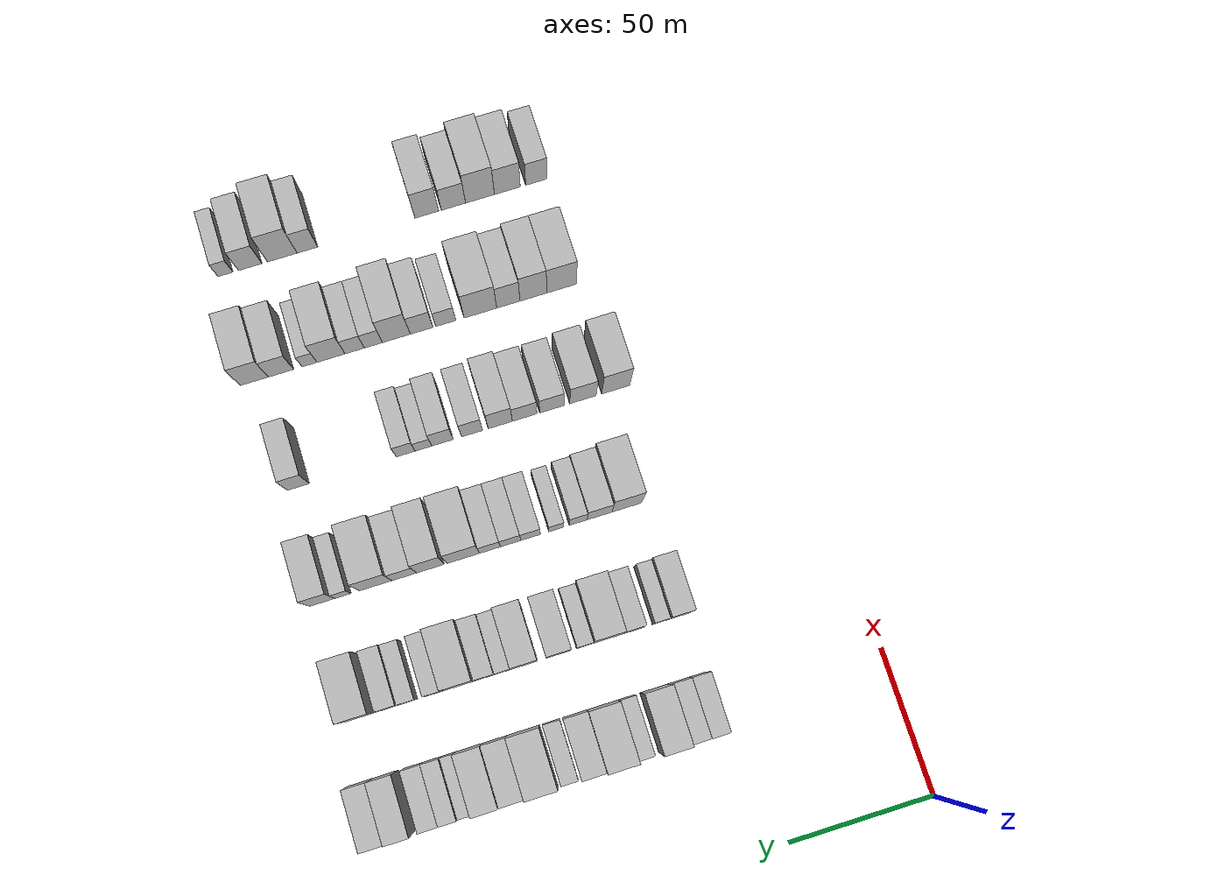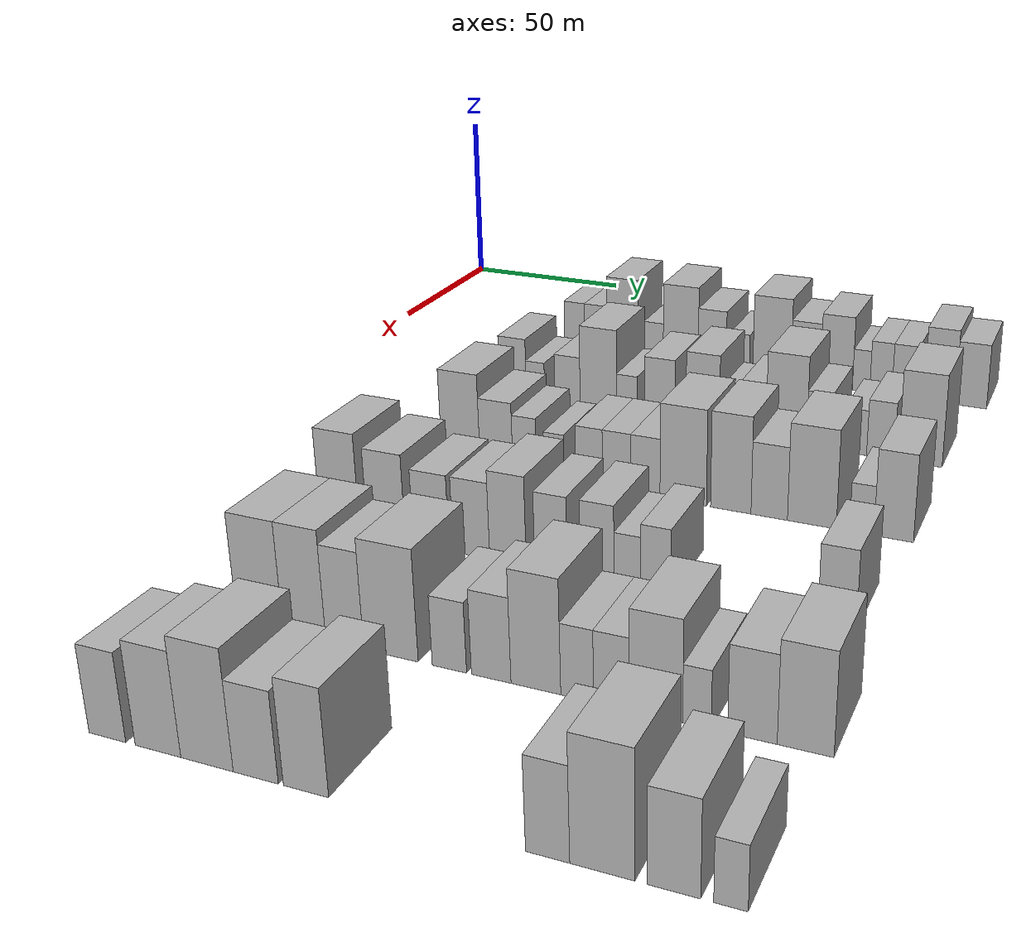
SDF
<sdf version="1.6">
 <world name="default">
  <model name="building_74">
   <static>1</static>
   <pose>50.0000 61.4282 0 0.000000 0.000000 0.000000</pose>
   <link name="link">
    <pose>0 0 7.50 0 0 0</pose>
    <collision name="collision"><geometry><box><size>20.0000 6.4562 15.0000</size></box></geometry></collision>
    <visual name="visual">
     <cast_shadows>0</cast_shadows>
     <geometry><box><size>20.0000 6.4562 15.0000</size></box></geometry>
     <material>
      <script>
       <uri>model://HANNAS_wall/materials/scripts</uri>
       <uri>model://HANNAS_wall/materials/textures</uri>
       <name>vrc/HANNAS_wall</name>
      </script>
     </material>
    </visual>
   </link>
  </model>
  <model name="building_75">
   <static>1</static>
   <pose>50.0000 68.1440 0 0.000000 0.000000 0.000000</pose>
   <link name="link">
    <pose>0 0 7.50 0 0 0</pose>
    <collision name="collision"><geometry><box><size>20.0000 6.9753 15.0000</size></box></geometry></collision>
    <visual name="visual">
     <cast_shadows>0</cast_shadows>
     <geometry><box><size>20.0000 6.9753 15.0000</size></box></geometry>
     <material>
      <script>
       <uri>model://HANNAS_wall/materials/scripts</uri>
       <uri>model://HANNAS_wall/materials/textures</uri>
       <name>vrc/HANNAS_wall</name>
      </script>
     </material>
    </visual>
   </link>
  </model>
  <model name="building_76">
   <static>1</static>
   <pose>50.0000 76.4512 0 0.000000 0.000000 0.000000</pose>
   <link name="link">
    <pose>0 0 12.00 0 0 0</pose>
    <collision name="collision"><geometry><box><size>20.0000 9.6390 24.0000</size></box></geometry></collision>
    <visual name="visual">
     <cast_shadows>0</cast_shadows>
     <geometry><box><size>20.0000 9.6390 24.0000</size></box></geometry>
     <material>
      <script>
       <uri>model://HANNAS_wall/materials/scripts</uri>
       <uri>model://HANNAS_wall/materials/textures</uri>
       <name>vrc/HANNAS_wall</name>
      </script>
     </material>
    </visual>
   </link>
  </model>
  <model name="building_77">
   <static>1</static>
   <pose>50.0000 86.1628 0 0.000000 0.000000 0.000000</pose>
   <link name="link">
    <pose>0 0 6.00 0 0 0</pose>
    <collision name="collision"><geometry><box><size>20.0000 5.7843 12.0000</size></box></geometry></collision>
    <visual name="visual">
     <cast_shadows>0</cast_shadows>
     <geometry><box><size>20.0000 5.7843 12.0000</size></box></geometry>
     <material>
      <script>
       <uri>model://HANNAS_wall/materials/scripts</uri>
       <uri>model://HANNAS_wall/materials/textures</uri>
       <name>vrc/HANNAS_wall</name>
      </script>
     </material>
    </visual>
   </link>
  </model>
  <model name="building_78">
   <static>1</static>
   <pose>50.0000 94.3628 0 0.000000 0.000000 0.000000</pose>
   <link name="link">
    <pose>0 0 12.00 0 0 0</pose>
    <collision name="collision"><geometry><box><size>20.0000 10.6158 24.0000</size></box></geometry></collision>
    <visual name="visual">
     <cast_shadows>0</cast_shadows>
     <geometry><box><size>20.0000 10.6158 24.0000</size></box></geometry>
     <material>
      <script>
       <uri>model://HANNAS_wall/materials/scripts</uri>
       <uri>model://HANNAS_wall/materials/textures</uri>
       <name>vrc/HANNAS_wall</name>
      </script>
     </material>
    </visual>
   </link>
  </model>
  <model name="building_79">
   <static>1</static>
   <pose>50.0000 103.8367 0 0.000000 0.000000 0.000000</pose>
   <link name="link">
    <pose>0 0 9.00 0 0 0</pose>
    <collision name="collision"><geometry><box><size>20.0000 8.3320 18.0000</size></box></geometry></collision>
    <visual name="visual">
     <cast_shadows>0</cast_shadows>
     <geometry><box><size>20.0000 8.3320 18.0000</size></box></geometry>
     <material>
      <script>
       <uri>model://HANNAS_wall/materials/scripts</uri>
       <uri>model://HANNAS_wall/materials/textures</uri>
       <name>vrc/HANNAS_wall</name>
      </script>
     </material>
    </visual>
   </link>
  </model>
  <model name="building_80">
   <static>1</static>
   <pose>50.0000 111.9396 0 0.000000 0.000000 0.000000</pose>
   <link name="link">
    <pose>0 0 6.00 0 0 0</pose>
    <collision name="collision"><geometry><box><size>20.0000 5.8737 12.0000</size></box></geometry></collision>
    <visual name="visual">
     <cast_shadows>0</cast_shadows>
     <geometry><box><size>20.0000 5.8737 12.0000</size></box></geometry>
     <material>
      <script>
       <uri>model://HANNAS_wall/materials/scripts</uri>
       <uri>model://HANNAS_wall/materials/textures</uri>
       <name>vrc/HANNAS_wall</name>
      </script>
     </material>
    </visual>
   </link>
  </model>
  <model name="building_81">
   <static>1</static>
   <pose>50.0000 121.3827 0 0.000000 0.000000 0.000000</pose>
   <link name="link">
    <pose>0 0 12.00 0 0 0</pose>
    <collision name="collision"><geometry><box><size>20.0000 11.0125 24.0000</size></box></geometry></collision>
    <visual name="visual">
     <cast_shadows>0</cast_shadows>
     <geometry><box><size>20.0000 11.0125 24.0000</size></box></geometry>
     <material>
      <script>
       <uri>model://HANNAS_wall/materials/scripts</uri>
       <uri>model://HANNAS_wall/materials/textures</uri>
       <name>vrc/HANNAS_wall</name>
      </script>
     </material>
    </visual>
   </link>
  </model>
  <model name="building_82">
   <static>1</static>
   <pose>50.0000 131.1170 0 0.000000 0.000000 0.000000</pose>
   <link name="link">
    <pose>0 0 9.00 0 0 0</pose>
    <collision name="collision"><geometry><box><size>20.0000 8.4562 18.0000</size></box></geometry></collision>
    <visual name="visual">
     <cast_shadows>0</cast_shadows>
     <geometry><box><size>20.0000 8.4562 18.0000</size></box></geometry>
     <material>
      <script>
       <uri>model://HANNAS_wall/materials/scripts</uri>
       <uri>model://HANNAS_wall/materials/textures</uri>
       <name>vrc/HANNAS_wall</name>
      </script>
     </material>
    </visual>
   </link>
  </model>
  <model name="building_83">
   <static>1</static>
   <pose>50.0000 139.8790 0 0.000000 0.000000 0.000000</pose>
   <link name="link">
    <pose>0 0 10.50 0 0 0</pose>
    <collision name="collision"><geometry><box><size>20.0000 9.0677 21.0000</size></box></geometry></collision>
    <visual name="visual">
     <cast_shadows>0</cast_shadows>
     <geometry><box><size>20.0000 9.0677 21.0000</size></box></geometry>
     <material>
      <script>
       <uri>model://HANNAS_wall/materials/scripts</uri>
       <uri>model://HANNAS_wall/materials/textures</uri>
       <name>vrc/HANNAS_wall</name>
      </script>
     </material>
    </visual>
   </link>
  </model>
  <model name="building_84">
   <static>1</static>
   <pose>50.0000 146.8270 0 0.000000 0.000000 0.000000</pose>
   <link name="link">
    <pose>0 0 6.00 0 0 0</pose>
    <collision name="collision"><geometry><box><size>20.0000 4.8284 12.0000</size></box></geometry></collision>
    <visual name="visual">
     <cast_shadows>0</cast_shadows>
     <geometry><box><size>20.0000 4.8284 12.0000</size></box></geometry>
     <material>
      <script>
       <uri>model://HANNAS_wall/materials/scripts</uri>
       <uri>model://HANNAS_wall/materials/textures</uri>
       <name>vrc/HANNAS_wall</name>
      </script>
     </material>
    </visual>
   </link>
  </model>
  <model name="building_85">
   <static>1</static>
   <pose>50.0000 152.3014 0 0.000000 0.000000 0.000000</pose>
   <link name="link">
    <pose>0 0 7.50 0 0 0</pose>
    <collision name="collision"><geometry><box><size>20.0000 6.1202 15.0000</size></box></geometry></collision>
    <visual name="visual">
     <cast_shadows>0</cast_shadows>
     <geometry><box><size>20.0000 6.1202 15.0000</size></box></geometry>
     <material>
      <script>
       <uri>model://HANNAS_wall/materials/scripts</uri>
       <uri>model://HANNAS_wall/materials/textures</uri>
       <name>vrc/HANNAS_wall</name>
      </script>
     </material>
    </visual>
   </link>
  </model>
  <model name="building_86">
   <static>1</static>
   <pose>50.0000 158.7077 0 0.000000 0.000000 0.000000</pose>
   <link name="link">
    <pose>0 0 7.50 0 0 0</pose>
    <collision name="collision"><geometry><box><size>20.0000 6.6924 15.0000</size></box></geometry></collision>
    <visual name="visual">
     <cast_shadows>0</cast_shadows>
     <geometry><box><size>20.0000 6.6924 15.0000</size></box></geometry>
     <material>
      <script>
       <uri>model://HANNAS_wall/materials/scripts</uri>
       <uri>model://HANNAS_wall/materials/textures</uri>
       <name>vrc/HANNAS_wall</name>
      </script>
     </material>
    </visual>
   </link>
  </model>
  <model name="building_87">
   <static>1</static>
   <pose>50.0000 168.2677 0 0.000000 0.000000 0.000000</pose>
   <link name="link">
    <pose>0 0 10.50 0 0 0</pose>
    <collision name="collision"><geometry><box><size>20.0000 8.4276 21.0000</size></box></geometry></collision>
    <visual name="visual">
     <cast_shadows>0</cast_shadows>
     <geometry><box><size>20.0000 8.4276 21.0000</size></box></geometry>
     <material>
      <script>
       <uri>model://HANNAS_wall/materials/scripts</uri>
       <uri>model://HANNAS_wall/materials/textures</uri>
       <name>vrc/HANNAS_wall</name>
      </script>
     </material>
    </visual>
   </link>
  </model>
  <model name="building_88">
   <static>1</static>
   <pose>50.0000 176.6414 0 0.000000 0.000000 0.000000</pose>
   <link name="link">
    <pose>0 0 9.00 0 0 0</pose>
    <collision name="collision"><geometry><box><size>20.0000 8.3197 18.0000</size></box></geometry></collision>
    <visual name="visual">
     <cast_shadows>0</cast_shadows>
     <geometry><box><size>20.0000 8.3197 18.0000</size></box></geometry>
     <material>
      <script>
       <uri>model://HANNAS_wall/materials/scripts</uri>
       <uri>model://HANNAS_wall/materials/textures</uri>
       <name>vrc/HANNAS_wall</name>
      </script>
     </material>
    </visual>
   </link>
  </model>
  <model name="building_212">
   <static>1</static>
   <pose>90.0000 60.9253 0 0.000000 0.000000 0.000000</pose>
   <link name="link">
    <pose>0 0 9.00 0 0 0</pose>
    <collision name="collision"><geometry><box><size>20.0000 7.9774 18.0000</size></box></geometry></collision>
    <visual name="visual">
     <cast_shadows>0</cast_shadows>
     <geometry><box><size>20.0000 7.9774 18.0000</size></box></geometry>
     <material>
      <script>
       <uri>model://HANNAS_wall/materials/scripts</uri>
       <uri>model://HANNAS_wall/materials/textures</uri>
       <name>vrc/HANNAS_wall</name>
      </script>
     </material>
    </visual>
   </link>
  </model>
  <model name="building_213">
   <static>1</static>
   <pose>90.0000 67.6078 0 0.000000 0.000000 0.000000</pose>
   <link name="link">
    <pose>0 0 6.00 0 0 0</pose>
    <collision name="collision"><geometry><box><size>20.0000 5.3876 12.0000</size></box></geometry></collision>
    <visual name="visual">
     <cast_shadows>0</cast_shadows>
     <geometry><box><size>20.0000 5.3876 12.0000</size></box></geometry>
     <material>
      <script>
       <uri>model://HANNAS_wall/materials/scripts</uri>
       <uri>model://HANNAS_wall/materials/textures</uri>
       <name>vrc/HANNAS_wall</name>
      </script>
     </material>
    </visual>
   </link>
  </model>
  <model name="building_214">
   <static>1</static>
   <pose>90.0000 76.9625 0 0.000000 0.000000 0.000000</pose>
   <link name="link">
    <pose>0 0 7.50 0 0 0</pose>
    <collision name="collision"><geometry><box><size>20.0000 7.3217 15.0000</size></box></geometry></collision>
    <visual name="visual">
     <cast_shadows>0</cast_shadows>
     <geometry><box><size>20.0000 7.3217 15.0000</size></box></geometry>
     <material>
      <script>
       <uri>model://HANNAS_wall/materials/scripts</uri>
       <uri>model://HANNAS_wall/materials/textures</uri>
       <name>vrc/HANNAS_wall</name>
      </script>
     </material>
    </visual>
   </link>
  </model>
  <model name="building_215">
   <static>1</static>
   <pose>90.0000 85.8339 0 0.000000 0.000000 0.000000</pose>
   <link name="link">
    <pose>0 0 12.00 0 0 0</pose>
    <collision name="collision"><geometry><box><size>20.0000 10.4212 24.0000</size></box></geometry></collision>
    <visual name="visual">
     <cast_shadows>0</cast_shadows>
     <geometry><box><size>20.0000 10.4212 24.0000</size></box></geometry>
     <material>
      <script>
       <uri>model://HANNAS_wall/materials/scripts</uri>
       <uri>model://HANNAS_wall/materials/textures</uri>
       <name>vrc/HANNAS_wall</name>
      </script>
     </material>
    </visual>
   </link>
  </model>
  <model name="building_216">
   <static>1</static>
   <pose>90.0000 93.9189 0 0.000000 0.000000 0.000000</pose>
   <link name="link">
    <pose>0 0 6.00 0 0 0</pose>
    <collision name="collision"><geometry><box><size>20.0000 5.7488 12.0000</size></box></geometry></collision>
    <visual name="visual">
     <cast_shadows>0</cast_shadows>
     <geometry><box><size>20.0000 5.7488 12.0000</size></box></geometry>
     <material>
      <script>
       <uri>model://HANNAS_wall/materials/scripts</uri>
       <uri>model://HANNAS_wall/materials/textures</uri>
       <name>vrc/HANNAS_wall</name>
      </script>
     </material>
    </visual>
   </link>
  </model>
  <model name="building_217">
   <static>1</static>
   <pose>90.0000 103.0473 0 0.000000 0.000000 0.000000</pose>
   <link name="link">
    <pose>0 0 9.00 0 0 0</pose>
    <collision name="collision"><geometry><box><size>20.0000 8.5080 18.0000</size></box></geometry></collision>
    <visual name="visual">
     <cast_shadows>0</cast_shadows>
     <geometry><box><size>20.0000 8.5080 18.0000</size></box></geometry>
     <material>
      <script>
       <uri>model://HANNAS_wall/materials/scripts</uri>
       <uri>model://HANNAS_wall/materials/textures</uri>
       <name>vrc/HANNAS_wall</name>
      </script>
     </material>
    </visual>
   </link>
  </model>
  <model name="building_218">
   <static>1</static>
   <pose>90.0000 114.8244 0 0.000000 0.000000 0.000000</pose>
   <link name="link">
    <pose>0 0 10.50 0 0 0</pose>
    <collision name="collision"><geometry><box><size>20.0000 9.0462 21.0000</size></box></geometry></collision>
    <visual name="visual">
     <cast_shadows>0</cast_shadows>
     <geometry><box><size>20.0000 9.0462 21.0000</size></box></geometry>
     <material>
      <script>
       <uri>model://HANNAS_wall/materials/scripts</uri>
       <uri>model://HANNAS_wall/materials/textures</uri>
       <name>vrc/HANNAS_wall</name>
      </script>
     </material>
    </visual>
   </link>
  </model>
  <model name="building_219">
   <static>1</static>
   <pose>90.0000 122.1387 0 0.000000 0.000000 0.000000</pose>
   <link name="link">
    <pose>0 0 6.00 0 0 0</pose>
    <collision name="collision"><geometry><box><size>20.0000 5.5823 12.0000</size></box></geometry></collision>
    <visual name="visual">
     <cast_shadows>0</cast_shadows>
     <geometry><box><size>20.0000 5.5823 12.0000</size></box></geometry>
     <material>
      <script>
       <uri>model://HANNAS_wall/materials/scripts</uri>
       <uri>model://HANNAS_wall/materials/textures</uri>
       <name>vrc/HANNAS_wall</name>
      </script>
     </material>
    </visual>
   </link>
  </model>
  <model name="building_220">
   <static>1</static>
   <pose>90.0000 128.3299 0 0.000000 0.000000 0.000000</pose>
   <link name="link">
    <pose>0 0 7.50 0 0 0</pose>
    <collision name="collision"><geometry><box><size>20.0000 6.8003 15.0000</size></box></geometry></collision>
    <visual name="visual">
     <cast_shadows>0</cast_shadows>
     <geometry><box><size>20.0000 6.8003 15.0000</size></box></geometry>
     <material>
      <script>
       <uri>model://HANNAS_wall/materials/scripts</uri>
       <uri>model://HANNAS_wall/materials/textures</uri>
       <name>vrc/HANNAS_wall</name>
      </script>
     </material>
    </visual>
   </link>
  </model>
  <model name="building_221">
   <static>1</static>
   <pose>90.0000 137.0487 0 0.000000 0.000000 0.000000</pose>
   <link name="link">
    <pose>0 0 12.00 0 0 0</pose>
    <collision name="collision"><geometry><box><size>20.0000 10.6373 24.0000</size></box></geometry></collision>
    <visual name="visual">
     <cast_shadows>0</cast_shadows>
     <geometry><box><size>20.0000 10.6373 24.0000</size></box></geometry>
     <material>
      <script>
       <uri>model://HANNAS_wall/materials/scripts</uri>
       <uri>model://HANNAS_wall/materials/textures</uri>
       <name>vrc/HANNAS_wall</name>
      </script>
     </material>
    </visual>
   </link>
  </model>
  <model name="building_222">
   <static>1</static>
   <pose>90.0000 145.5464 0 0.000000 0.000000 0.000000</pose>
   <link name="link">
    <pose>0 0 7.50 0 0 0</pose>
    <collision name="collision"><geometry><box><size>20.0000 6.3581 15.0000</size></box></geometry></collision>
    <visual name="visual">
     <cast_shadows>0</cast_shadows>
     <geometry><box><size>20.0000 6.3581 15.0000</size></box></geometry>
     <material>
      <script>
       <uri>model://HANNAS_wall/materials/scripts</uri>
       <uri>model://HANNAS_wall/materials/textures</uri>
       <name>vrc/HANNAS_wall</name>
      </script>
     </material>
    </visual>
   </link>
  </model>
  <model name="building_223">
   <static>1</static>
   <pose>90.0000 154.7102 0 0.000000 0.000000 0.000000</pose>
   <link name="link">
    <pose>0 0 6.00 0 0 0</pose>
    <collision name="collision"><geometry><box><size>20.0000 5.9695 12.0000</size></box></geometry></collision>
    <visual name="visual">
     <cast_shadows>0</cast_shadows>
     <geometry><box><size>20.0000 5.9695 12.0000</size></box></geometry>
     <material>
      <script>
       <uri>model://HANNAS_wall/materials/scripts</uri>
       <uri>model://HANNAS_wall/materials/textures</uri>
       <name>vrc/HANNAS_wall</name>
      </script>
     </material>
    </visual>
   </link>
  </model>
  <model name="building_224">
   <static>1</static>
   <pose>90.0000 161.1571 0 0.000000 0.000000 0.000000</pose>
   <link name="link">
    <pose>0 0 7.50 0 0 0</pose>
    <collision name="collision"><geometry><box><size>20.0000 6.9242 15.0000</size></box></geometry></collision>
    <visual name="visual">
     <cast_shadows>0</cast_shadows>
     <geometry><box><size>20.0000 6.9242 15.0000</size></box></geometry>
     <material>
      <script>
       <uri>model://HANNAS_wall/materials/scripts</uri>
       <uri>model://HANNAS_wall/materials/textures</uri>
       <name>vrc/HANNAS_wall</name>
      </script>
     </material>
    </visual>
   </link>
  </model>
  <model name="building_225">
   <static>1</static>
   <pose>90.0000 170.9820 0 0.000000 0.000000 0.000000</pose>
   <link name="link">
    <pose>0 0 12.00 0 0 0</pose>
    <collision name="collision"><geometry><box><size>20.0000 10.7256 24.0000</size></box></geometry></collision>
    <visual name="visual">
     <cast_shadows>0</cast_shadows>
     <geometry><box><size>20.0000 10.7256 24.0000</size></box></geometry>
     <material>
      <script>
       <uri>model://HANNAS_wall/materials/scripts</uri>
       <uri>model://HANNAS_wall/materials/textures</uri>
       <name>vrc/HANNAS_wall</name>
      </script>
     </material>
    </visual>
   </link>
  </model>
  <model name="building_350">
   <static>1</static>
   <pose>130.0000 66.3436 0 0.000000 0.000000 0.000000</pose>
   <link name="link">
    <pose>0 0 12.00 0 0 0</pose>
    <collision name="collision"><geometry><box><size>20.0000 10.5011 24.0000</size></box></geometry></collision>
    <visual name="visual">
     <cast_shadows>0</cast_shadows>
     <geometry><box><size>20.0000 10.5011 24.0000</size></box></geometry>
     <material>
      <script>
       <uri>model://HANNAS_wall/materials/scripts</uri>
       <uri>model://HANNAS_wall/materials/textures</uri>
       <name>vrc/HANNAS_wall</name>
      </script>
     </material>
    </visual>
   </link>
  </model>
  <model name="building_351">
   <static>1</static>
   <pose>130.0000 76.0034 0 0.000000 0.000000 0.000000</pose>
   <link name="link">
    <pose>0 0 9.00 0 0 0</pose>
    <collision name="collision"><geometry><box><size>20.0000 8.8185 18.0000</size></box></geometry></collision>
    <visual name="visual">
     <cast_shadows>0</cast_shadows>
     <geometry><box><size>20.0000 8.8185 18.0000</size></box></geometry>
     <material>
      <script>
       <uri>model://HANNAS_wall/materials/scripts</uri>
       <uri>model://HANNAS_wall/materials/textures</uri>
       <name>vrc/HANNAS_wall</name>
      </script>
     </material>
    </visual>
   </link>
  </model>
  <model name="building_352">
   <static>1</static>
   <pose>130.0000 83.5599 0 0.000000 0.000000 0.000000</pose>
   <link name="link">
    <pose>0 0 7.50 0 0 0</pose>
    <collision name="collision"><geometry><box><size>20.0000 6.2944 15.0000</size></box></geometry></collision>
    <visual name="visual">
     <cast_shadows>0</cast_shadows>
     <geometry><box><size>20.0000 6.2944 15.0000</size></box></geometry>
     <material>
      <script>
       <uri>model://HANNAS_wall/materials/scripts</uri>
       <uri>model://HANNAS_wall/materials/textures</uri>
       <name>vrc/HANNAS_wall</name>
      </script>
     </material>
    </visual>
   </link>
  </model>
  <model name="building_353">
   <static>1</static>
   <pose>130.0000 91.3104 0 0.000000 0.000000 0.000000</pose>
   <link name="link">
    <pose>0 0 6.00 0 0 0</pose>
    <collision name="collision"><geometry><box><size>20.0000 5.2067 12.0000</size></box></geometry></collision>
    <visual name="visual">
     <cast_shadows>0</cast_shadows>
     <geometry><box><size>20.0000 5.2067 12.0000</size></box></geometry>
     <material>
      <script>
       <uri>model://HANNAS_wall/materials/scripts</uri>
       <uri>model://HANNAS_wall/materials/textures</uri>
       <name>vrc/HANNAS_wall</name>
      </script>
     </material>
    </visual>
   </link>
  </model>
  <model name="building_354">
   <static>1</static>
   <pose>130.0000 100.3685 0 0.000000 0.000000 0.000000</pose>
   <link name="link">
    <pose>0 0 7.50 0 0 0</pose>
    <collision name="collision"><geometry><box><size>20.0000 6.9093 15.0000</size></box></geometry></collision>
    <visual name="visual">
     <cast_shadows>0</cast_shadows>
     <geometry><box><size>20.0000 6.9093 15.0000</size></box></geometry>
     <material>
      <script>
       <uri>model://HANNAS_wall/materials/scripts</uri>
       <uri>model://HANNAS_wall/materials/textures</uri>
       <name>vrc/HANNAS_wall</name>
      </script>
     </material>
    </visual>
   </link>
  </model>
  <model name="building_355">
   <static>1</static>
   <pose>130.0000 107.3992 0 0.000000 0.000000 0.000000</pose>
   <link name="link">
    <pose>0 0 7.50 0 0 0</pose>
    <collision name="collision"><geometry><box><size>20.0000 7.1522 15.0000</size></box></geometry></collision>
    <visual name="visual">
     <cast_shadows>0</cast_shadows>
     <geometry><box><size>20.0000 7.1522 15.0000</size></box></geometry>
     <material>
      <script>
       <uri>model://HANNAS_wall/materials/scripts</uri>
       <uri>model://HANNAS_wall/materials/textures</uri>
       <name>vrc/HANNAS_wall</name>
      </script>
     </material>
    </visual>
   </link>
  </model>
  <model name="building_356">
   <static>1</static>
   <pose>130.0000 114.6066 0 0.000000 0.000000 0.000000</pose>
   <link name="link">
    <pose>0 0 7.50 0 0 0</pose>
    <collision name="collision"><geometry><box><size>20.0000 7.2624 15.0000</size></box></geometry></collision>
    <visual name="visual">
     <cast_shadows>0</cast_shadows>
     <geometry><box><size>20.0000 7.2624 15.0000</size></box></geometry>
     <material>
      <script>
       <uri>model://HANNAS_wall/materials/scripts</uri>
       <uri>model://HANNAS_wall/materials/textures</uri>
       <name>vrc/HANNAS_wall</name>
      </script>
     </material>
    </visual>
   </link>
  </model>
  <model name="building_357">
   <static>1</static>
   <pose>130.0000 123.9338 0 0.000000 0.000000 0.000000</pose>
   <link name="link">
    <pose>0 0 12.00 0 0 0</pose>
    <collision name="collision"><geometry><box><size>20.0000 11.3920 24.0000</size></box></geometry></collision>
    <visual name="visual">
     <cast_shadows>0</cast_shadows>
     <geometry><box><size>20.0000 11.3920 24.0000</size></box></geometry>
     <material>
      <script>
       <uri>model://HANNAS_wall/materials/scripts</uri>
       <uri>model://HANNAS_wall/materials/textures</uri>
       <name>vrc/HANNAS_wall</name>
      </script>
     </material>
    </visual>
   </link>
  </model>
  <model name="building_358">
   <static>1</static>
   <pose>130.0000 135.4759 0 0.000000 0.000000 0.000000</pose>
   <link name="link">
    <pose>0 0 12.00 0 0 0</pose>
    <collision name="collision"><geometry><box><size>20.0000 9.6922 24.0000</size></box></geometry></collision>
    <visual name="visual">
     <cast_shadows>0</cast_shadows>
     <geometry><box><size>20.0000 9.6922 24.0000</size></box></geometry>
     <material>
      <script>
       <uri>model://HANNAS_wall/materials/scripts</uri>
       <uri>model://HANNAS_wall/materials/textures</uri>
       <name>vrc/HANNAS_wall</name>
      </script>
     </material>
    </visual>
   </link>
  </model>
  <model name="building_359">
   <static>1</static>
   <pose>130.0000 144.6103 0 0.000000 0.000000 0.000000</pose>
   <link name="link">
    <pose>0 0 9.00 0 0 0</pose>
    <collision name="collision"><geometry><box><size>20.0000 8.5766 18.0000</size></box></geometry></collision>
    <visual name="visual">
     <cast_shadows>0</cast_shadows>
     <geometry><box><size>20.0000 8.5766 18.0000</size></box></geometry>
     <material>
      <script>
       <uri>model://HANNAS_wall/materials/scripts</uri>
       <uri>model://HANNAS_wall/materials/textures</uri>
       <name>vrc/HANNAS_wall</name>
      </script>
     </material>
    </visual>
   </link>
  </model>
  <model name="building_360">
   <static>1</static>
   <pose>130.0000 154.5294 0 0.000000 0.000000 0.000000</pose>
   <link name="link">
    <pose>0 0 12.00 0 0 0</pose>
    <collision name="collision"><geometry><box><size>20.0000 11.2617 24.0000</size></box></geometry></collision>
    <visual name="visual">
     <cast_shadows>0</cast_shadows>
     <geometry><box><size>20.0000 11.2617 24.0000</size></box></geometry>
     <material>
      <script>
       <uri>model://HANNAS_wall/materials/scripts</uri>
       <uri>model://HANNAS_wall/materials/textures</uri>
       <name>vrc/HANNAS_wall</name>
      </script>
     </material>
    </visual>
   </link>
  </model>
  <model name="building_361">
   <static>1</static>
   <pose>130.0000 165.8953 0 0.000000 0.000000 0.000000</pose>
   <link name="link">
    <pose>0 0 6.00 0 0 0</pose>
    <collision name="collision"><geometry><box><size>20.0000 5.4702 12.0000</size></box></geometry></collision>
    <visual name="visual">
     <cast_shadows>0</cast_shadows>
     <geometry><box><size>20.0000 5.4702 12.0000</size></box></geometry>
     <material>
      <script>
       <uri>model://HANNAS_wall/materials/scripts</uri>
       <uri>model://HANNAS_wall/materials/textures</uri>
       <name>vrc/HANNAS_wall</name>
      </script>
     </material>
    </visual>
   </link>
  </model>
  <model name="building_362">
   <static>1</static>
   <pose>130.0000 173.0348 0 0.000000 0.000000 0.000000</pose>
   <link name="link">
    <pose>0 0 10.50 0 0 0</pose>
    <collision name="collision"><geometry><box><size>20.0000 8.8087 21.0000</size></box></geometry></collision>
    <visual name="visual">
     <cast_shadows>0</cast_shadows>
     <geometry><box><size>20.0000 8.8087 21.0000</size></box></geometry>
     <material>
      <script>
       <uri>model://HANNAS_wall/materials/scripts</uri>
       <uri>model://HANNAS_wall/materials/textures</uri>
       <name>vrc/HANNAS_wall</name>
      </script>
     </material>
    </visual>
   </link>
  </model>
  <model name="building_486">
   <static>1</static>
   <pose>170.0000 57.3718 0 0.000000 0.000000 0.000000</pose>
   <link name="link">
    <pose>0 0 12.00 0 0 0</pose>
    <collision name="collision"><geometry><box><size>20.0000 10.0979 24.0000</size></box></geometry></collision>
    <visual name="visual">
     <cast_shadows>0</cast_shadows>
     <geometry><box><size>20.0000 10.0979 24.0000</size></box></geometry>
     <material>
      <script>
       <uri>model://HANNAS_wall/materials/scripts</uri>
       <uri>model://HANNAS_wall/materials/textures</uri>
       <name>vrc/HANNAS_wall</name>
      </script>
     </material>
    </visual>
   </link>
  </model>
  <model name="building_487">
   <static>1</static>
   <pose>170.0000 69.1782 0 0.000000 0.000000 0.000000</pose>
   <link name="link">
    <pose>0 0 10.50 0 0 0</pose>
    <collision name="collision"><geometry><box><size>20.0000 9.5149 21.0000</size></box></geometry></collision>
    <visual name="visual">
     <cast_shadows>0</cast_shadows>
     <geometry><box><size>20.0000 9.5149 21.0000</size></box></geometry>
     <material>
      <script>
       <uri>model://HANNAS_wall/materials/scripts</uri>
       <uri>model://HANNAS_wall/materials/textures</uri>
       <name>vrc/HANNAS_wall</name>
      </script>
     </material>
    </visual>
   </link>
  </model>
  <model name="building_488">
   <static>1</static>
   <pose>170.0000 80.3247 0 0.000000 0.000000 0.000000</pose>
   <link name="link">
    <pose>0 0 9.00 0 0 0</pose>
    <collision name="collision"><geometry><box><size>20.0000 8.7781 18.0000</size></box></geometry></collision>
    <visual name="visual">
     <cast_shadows>0</cast_shadows>
     <geometry><box><size>20.0000 8.7781 18.0000</size></box></geometry>
     <material>
      <script>
       <uri>model://HANNAS_wall/materials/scripts</uri>
       <uri>model://HANNAS_wall/materials/textures</uri>
       <name>vrc/HANNAS_wall</name>
      </script>
     </material>
    </visual>
   </link>
  </model>
  <model name="building_489">
   <static>1</static>
   <pose>170.0000 90.0945 0 0.000000 0.000000 0.000000</pose>
   <link name="link">
    <pose>0 0 9.00 0 0 0</pose>
    <collision name="collision"><geometry><box><size>20.0000 8.7614 18.0000</size></box></geometry></collision>
    <visual name="visual">
     <cast_shadows>0</cast_shadows>
     <geometry><box><size>20.0000 8.7614 18.0000</size></box></geometry>
     <material>
      <script>
       <uri>model://HANNAS_wall/materials/scripts</uri>
       <uri>model://HANNAS_wall/materials/textures</uri>
       <name>vrc/HANNAS_wall</name>
      </script>
     </material>
    </visual>
   </link>
  </model>
  <model name="building_490">
   <static>1</static>
   <pose>170.0000 98.7942 0 0.000000 0.000000 0.000000</pose>
   <link name="link">
    <pose>0 0 10.50 0 0 0</pose>
    <collision name="collision"><geometry><box><size>20.0000 8.6380 21.0000</size></box></geometry></collision>
    <visual name="visual">
     <cast_shadows>0</cast_shadows>
     <geometry><box><size>20.0000 8.6380 21.0000</size></box></geometry>
     <material>
      <script>
       <uri>model://HANNAS_wall/materials/scripts</uri>
       <uri>model://HANNAS_wall/materials/textures</uri>
       <name>vrc/HANNAS_wall</name>
      </script>
     </material>
    </visual>
   </link>
  </model>
  <model name="building_491">
   <static>1</static>
   <pose>170.0000 108.8485 0 0.000000 0.000000 0.000000</pose>
   <link name="link">
    <pose>0 0 9.00 0 0 0</pose>
    <collision name="collision"><geometry><box><size>20.0000 7.4707 18.0000</size></box></geometry></collision>
    <visual name="visual">
     <cast_shadows>0</cast_shadows>
     <geometry><box><size>20.0000 7.4707 18.0000</size></box></geometry>
     <material>
      <script>
       <uri>model://HANNAS_wall/materials/scripts</uri>
       <uri>model://HANNAS_wall/materials/textures</uri>
       <name>vrc/HANNAS_wall</name>
      </script>
     </material>
    </visual>
   </link>
  </model>
  <model name="building_492">
   <static>1</static>
   <pose>170.0000 119.3935 0 0.000000 0.000000 0.000000</pose>
   <link name="link">
    <pose>0 0 9.00 0 0 0</pose>
    <collision name="collision"><geometry><box><size>20.0000 7.6192 18.0000</size></box></geometry></collision>
    <visual name="visual">
     <cast_shadows>0</cast_shadows>
     <geometry><box><size>20.0000 7.6192 18.0000</size></box></geometry>
     <material>
      <script>
       <uri>model://HANNAS_wall/materials/scripts</uri>
       <uri>model://HANNAS_wall/materials/textures</uri>
       <name>vrc/HANNAS_wall</name>
      </script>
     </material>
    </visual>
   </link>
  </model>
  <model name="building_493">
   <static>1</static>
   <pose>170.0000 126.1631 0 0.000000 0.000000 0.000000</pose>
   <link name="link">
    <pose>0 0 6.00 0 0 0</pose>
    <collision name="collision"><geometry><box><size>20.0000 5.9201 12.0000</size></box></geometry></collision>
    <visual name="visual">
     <cast_shadows>0</cast_shadows>
     <geometry><box><size>20.0000 5.9201 12.0000</size></box></geometry>
     <material>
      <script>
       <uri>model://HANNAS_wall/materials/scripts</uri>
       <uri>model://HANNAS_wall/materials/textures</uri>
       <name>vrc/HANNAS_wall</name>
      </script>
     </material>
    </visual>
   </link>
  </model>
  <model name="building_494">
   <static>1</static>
   <pose>170.0000 132.4391 0 0.000000 0.000000 0.000000</pose>
   <link name="link">
    <pose>0 0 7.50 0 0 0</pose>
    <collision name="collision"><geometry><box><size>20.0000 6.6319 15.0000</size></box></geometry></collision>
    <visual name="visual">
     <cast_shadows>0</cast_shadows>
     <geometry><box><size>20.0000 6.6319 15.0000</size></box></geometry>
     <material>
      <script>
       <uri>model://HANNAS_wall/materials/scripts</uri>
       <uri>model://HANNAS_wall/materials/textures</uri>
       <name>vrc/HANNAS_wall</name>
      </script>
     </material>
    </visual>
   </link>
  </model>
  <model name="building_495">
   <static>1</static>
   <pose>170.0000 170.3896 0 0.000000 0.000000 0.000000</pose>
   <link name="link">
    <pose>0 0 9.00 0 0 0</pose>
    <collision name="collision"><geometry><box><size>20.0000 7.7564 18.0000</size></box></geometry></collision>
    <visual name="visual">
     <cast_shadows>0</cast_shadows>
     <geometry><box><size>20.0000 7.7564 18.0000</size></box></geometry>
     <material>
      <script>
       <uri>model://HANNAS_wall/materials/scripts</uri>
       <uri>model://HANNAS_wall/materials/textures</uri>
       <name>vrc/HANNAS_wall</name>
      </script>
     </material>
    </visual>
   </link>
  </model>
  <model name="building_620">
   <static>1</static>
   <pose>210.0000 64.3314 0 0.000000 0.000000 0.000000</pose>
   <link name="link">
    <pose>0 0 12.00 0 0 0</pose>
    <collision name="collision"><geometry><box><size>20.0000 10.7563 24.0000</size></box></geometry></collision>
    <visual name="visual">
     <cast_shadows>0</cast_shadows>
     <geometry><box><size>20.0000 10.7563 24.0000</size></box></geometry>
     <material>
      <script>
       <uri>model://HANNAS_wall/materials/scripts</uri>
       <uri>model://HANNAS_wall/materials/textures</uri>
       <name>vrc/HANNAS_wall</name>
      </script>
     </material>
    </visual>
   </link>
  </model>
  <model name="building_621">
   <static>1</static>
   <pose>210.0000 74.5759 0 0.000000 0.000000 0.000000</pose>
   <link name="link">
    <pose>0 0 12.00 0 0 0</pose>
    <collision name="collision"><geometry><box><size>20.0000 9.7328 24.0000</size></box></geometry></collision>
    <visual name="visual">
     <cast_shadows>0</cast_shadows>
     <geometry><box><size>20.0000 9.7328 24.0000</size></box></geometry>
     <material>
      <script>
       <uri>model://HANNAS_wall/materials/scripts</uri>
       <uri>model://HANNAS_wall/materials/textures</uri>
       <name>vrc/HANNAS_wall</name>
      </script>
     </material>
    </visual>
   </link>
  </model>
  <model name="building_622">
   <static>1</static>
   <pose>210.0000 83.6643 0 0.000000 0.000000 0.000000</pose>
   <link name="link">
    <pose>0 0 10.50 0 0 0</pose>
    <collision name="collision"><geometry><box><size>20.0000 8.4440 21.0000</size></box></geometry></collision>
    <visual name="visual">
     <cast_shadows>0</cast_shadows>
     <geometry><box><size>20.0000 8.4440 21.0000</size></box></geometry>
     <material>
      <script>
       <uri>model://HANNAS_wall/materials/scripts</uri>
       <uri>model://HANNAS_wall/materials/textures</uri>
       <name>vrc/HANNAS_wall</name>
      </script>
     </material>
    </visual>
   </link>
  </model>
  <model name="building_623">
   <static>1</static>
   <pose>210.0000 93.8051 0 0.000000 0.000000 0.000000</pose>
   <link name="link">
    <pose>0 0 12.00 0 0 0</pose>
    <collision name="collision"><geometry><box><size>20.0000 11.8374 24.0000</size></box></geometry></collision>
    <visual name="visual">
     <cast_shadows>0</cast_shadows>
     <geometry><box><size>20.0000 11.8374 24.0000</size></box></geometry>
     <material>
      <script>
       <uri>model://HANNAS_wall/materials/scripts</uri>
       <uri>model://HANNAS_wall/materials/textures</uri>
       <name>vrc/HANNAS_wall</name>
      </script>
     </material>
    </visual>
   </link>
  </model>
  <model name="building_624">
   <static>1</static>
   <pose>210.0000 106.3437 0 0.000000 0.000000 0.000000</pose>
   <link name="link">
    <pose>0 0 7.50 0 0 0</pose>
    <collision name="collision"><geometry><box><size>20.0000 7.2400 15.0000</size></box></geometry></collision>
    <visual name="visual">
     <cast_shadows>0</cast_shadows>
     <geometry><box><size>20.0000 7.2400 15.0000</size></box></geometry>
     <material>
      <script>
       <uri>model://HANNAS_wall/materials/scripts</uri>
       <uri>model://HANNAS_wall/materials/textures</uri>
       <name>vrc/HANNAS_wall</name>
      </script>
     </material>
    </visual>
   </link>
  </model>
  <model name="building_625">
   <static>1</static>
   <pose>210.0000 115.0497 0 0.000000 0.000000 0.000000</pose>
   <link name="link">
    <pose>0 0 9.00 0 0 0</pose>
    <collision name="collision"><geometry><box><size>20.0000 8.1720 18.0000</size></box></geometry></collision>
    <visual name="visual">
     <cast_shadows>0</cast_shadows>
     <geometry><box><size>20.0000 8.1720 18.0000</size></box></geometry>
     <material>
      <script>
       <uri>model://HANNAS_wall/materials/scripts</uri>
       <uri>model://HANNAS_wall/materials/textures</uri>
       <name>vrc/HANNAS_wall</name>
      </script>
     </material>
    </visual>
   </link>
  </model>
  <model name="building_626">
   <static>1</static>
   <pose>210.0000 124.1516 0 0.000000 0.000000 0.000000</pose>
   <link name="link">
    <pose>0 0 12.00 0 0 0</pose>
    <collision name="collision"><geometry><box><size>20.0000 10.0318 24.0000</size></box></geometry></collision>
    <visual name="visual">
     <cast_shadows>0</cast_shadows>
     <geometry><box><size>20.0000 10.0318 24.0000</size></box></geometry>
     <material>
      <script>
       <uri>model://HANNAS_wall/materials/scripts</uri>
       <uri>model://HANNAS_wall/materials/textures</uri>
       <name>vrc/HANNAS_wall</name>
      </script>
     </material>
    </visual>
   </link>
  </model>
  <model name="building_627">
   <static>1</static>
   <pose>210.0000 132.4196 0 0.000000 0.000000 0.000000</pose>
   <link name="link">
    <pose>0 0 7.50 0 0 0</pose>
    <collision name="collision"><geometry><box><size>20.0000 6.5040 15.0000</size></box></geometry></collision>
    <visual name="visual">
     <cast_shadows>0</cast_shadows>
     <geometry><box><size>20.0000 6.5040 15.0000</size></box></geometry>
     <material>
      <script>
       <uri>model://HANNAS_wall/materials/scripts</uri>
       <uri>model://HANNAS_wall/materials/textures</uri>
       <name>vrc/HANNAS_wall</name>
      </script>
     </material>
    </visual>
   </link>
  </model>
  <model name="building_628">
   <static>1</static>
   <pose>210.0000 139.1387 0 0.000000 0.000000 0.000000</pose>
   <link name="link">
    <pose>0 0 7.50 0 0 0</pose>
    <collision name="collision"><geometry><box><size>20.0000 6.9343 15.0000</size></box></geometry></collision>
    <visual name="visual">
     <cast_shadows>0</cast_shadows>
     <geometry><box><size>20.0000 6.9343 15.0000</size></box></geometry>
     <material>
      <script>
       <uri>model://HANNAS_wall/materials/scripts</uri>
       <uri>model://HANNAS_wall/materials/textures</uri>
       <name>vrc/HANNAS_wall</name>
      </script>
     </material>
    </visual>
   </link>
  </model>
  <model name="building_629">
   <static>1</static>
   <pose>210.0000 147.6513 0 0.000000 0.000000 0.000000</pose>
   <link name="link">
    <pose>0 0 10.50 0 0 0</pose>
    <collision name="collision"><geometry><box><size>20.0000 10.0909 21.0000</size></box></geometry></collision>
    <visual name="visual">
     <cast_shadows>0</cast_shadows>
     <geometry><box><size>20.0000 10.0909 21.0000</size></box></geometry>
     <material>
      <script>
       <uri>model://HANNAS_wall/materials/scripts</uri>
       <uri>model://HANNAS_wall/materials/textures</uri>
       <name>vrc/HANNAS_wall</name>
      </script>
     </material>
    </visual>
   </link>
  </model>
  <model name="building_630">
   <static>1</static>
   <pose>210.0000 155.3549 0 0.000000 0.000000 0.000000</pose>
   <link name="link">
    <pose>0 0 6.00 0 0 0</pose>
    <collision name="collision"><geometry><box><size>20.0000 5.3163 12.0000</size></box></geometry></collision>
    <visual name="visual">
     <cast_shadows>0</cast_shadows>
     <geometry><box><size>20.0000 5.3163 12.0000</size></box></geometry>
     <material>
      <script>
       <uri>model://HANNAS_wall/materials/scripts</uri>
       <uri>model://HANNAS_wall/materials/textures</uri>
       <name>vrc/HANNAS_wall</name>
      </script>
     </material>
    </visual>
   </link>
  </model>
  <model name="building_631">
   <static>1</static>
   <pose>210.0000 165.4966 0 0.000000 0.000000 0.000000</pose>
   <link name="link">
    <pose>0 0 9.00 0 0 0</pose>
    <collision name="collision"><geometry><box><size>20.0000 8.9671 18.0000</size></box></geometry></collision>
    <visual name="visual">
     <cast_shadows>0</cast_shadows>
     <geometry><box><size>20.0000 8.9671 18.0000</size></box></geometry>
     <material>
      <script>
       <uri>model://HANNAS_wall/materials/scripts</uri>
       <uri>model://HANNAS_wall/materials/textures</uri>
       <name>vrc/HANNAS_wall</name>
      </script>
     </material>
    </visual>
   </link>
  </model>
  <model name="building_632">
   <static>1</static>
   <pose>210.0000 175.0019 0 0.000000 0.000000 0.000000</pose>
   <link name="link">
    <pose>0 0 10.50 0 0 0</pose>
    <collision name="collision"><geometry><box><size>20.0000 10.0436 21.0000</size></box></geometry></collision>
    <visual name="visual">
     <cast_shadows>0</cast_shadows>
     <geometry><box><size>20.0000 10.0436 21.0000</size></box></geometry>
     <material>
      <script>
       <uri>model://HANNAS_wall/materials/scripts</uri>
       <uri>model://HANNAS_wall/materials/textures</uri>
       <name>vrc/HANNAS_wall</name>
      </script>
     </material>
    </visual>
   </link>
  </model>
  <model name="building_756">
   <static>1</static>
   <pose>250.0000 61.0641 0 0.000000 0.000000 0.000000</pose>
   <link name="link">
    <pose>0 0 9.00 0 0 0</pose>
    <collision name="collision"><geometry><box><size>20.0000 7.8854 18.0000</size></box></geometry></collision>
    <visual name="visual">
     <cast_shadows>0</cast_shadows>
     <geometry><box><size>20.0000 7.8854 18.0000</size></box></geometry>
     <material>
      <script>
       <uri>model://HANNAS_wall/materials/scripts</uri>
       <uri>model://HANNAS_wall/materials/textures</uri>
       <name>vrc/HANNAS_wall</name>
      </script>
     </material>
    </visual>
   </link>
  </model>
  <model name="building_757">
   <static>1</static>
   <pose>250.0000 71.7654 0 0.000000 0.000000 0.000000</pose>
   <link name="link">
    <pose>0 0 10.50 0 0 0</pose>
    <collision name="collision"><geometry><box><size>20.0000 9.5172 21.0000</size></box></geometry></collision>
    <visual name="visual">
     <cast_shadows>0</cast_shadows>
     <geometry><box><size>20.0000 9.5172 21.0000</size></box></geometry>
     <material>
      <script>
       <uri>model://HANNAS_wall/materials/scripts</uri>
       <uri>model://HANNAS_wall/materials/textures</uri>
       <name>vrc/HANNAS_wall</name>
      </script>
     </material>
    </visual>
   </link>
  </model>
  <model name="building_758">
   <static>1</static>
   <pose>250.0000 81.8494 0 0.000000 0.000000 0.000000</pose>
   <link name="link">
    <pose>0 0 12.00 0 0 0</pose>
    <collision name="collision"><geometry><box><size>20.0000 10.6507 24.0000</size></box></geometry></collision>
    <visual name="visual">
     <cast_shadows>0</cast_shadows>
     <geometry><box><size>20.0000 10.6507 24.0000</size></box></geometry>
     <material>
      <script>
       <uri>model://HANNAS_wall/materials/scripts</uri>
       <uri>model://HANNAS_wall/materials/textures</uri>
       <name>vrc/HANNAS_wall</name>
      </script>
     </material>
    </visual>
   </link>
  </model>
  <model name="building_759">
   <static>1</static>
   <pose>250.0000 91.6245 0 0.000000 0.000000 0.000000</pose>
   <link name="link">
    <pose>0 0 9.00 0 0 0</pose>
    <collision name="collision"><geometry><box><size>20.0000 8.8996 18.0000</size></box></geometry></collision>
    <visual name="visual">
     <cast_shadows>0</cast_shadows>
     <geometry><box><size>20.0000 8.8996 18.0000</size></box></geometry>
     <material>
      <script>
       <uri>model://HANNAS_wall/materials/scripts</uri>
       <uri>model://HANNAS_wall/materials/textures</uri>
       <name>vrc/HANNAS_wall</name>
      </script>
     </material>
    </visual>
   </link>
  </model>
  <model name="building_760">
   <static>1</static>
   <pose>250.0000 101.4259 0 0.000000 0.000000 0.000000</pose>
   <link name="link">
    <pose>0 0 10.50 0 0 0</pose>
    <collision name="collision"><geometry><box><size>20.0000 8.7033 21.0000</size></box></geometry></collision>
    <visual name="visual">
     <cast_shadows>0</cast_shadows>
     <geometry><box><size>20.0000 8.7033 21.0000</size></box></geometry>
     <material>
      <script>
       <uri>model://HANNAS_wall/materials/scripts</uri>
       <uri>model://HANNAS_wall/materials/textures</uri>
       <name>vrc/HANNAS_wall</name>
      </script>
     </material>
    </visual>
   </link>
  </model>
  <model name="building_761">
   <static>1</static>
   <pose>250.0000 145.0062 0 0.000000 0.000000 0.000000</pose>
   <link name="link">
    <pose>0 0 9.00 0 0 0</pose>
    <collision name="collision"><geometry><box><size>20.0000 7.4858 18.0000</size></box></geometry></collision>
    <visual name="visual">
     <cast_shadows>0</cast_shadows>
     <geometry><box><size>20.0000 7.4858 18.0000</size></box></geometry>
     <material>
      <script>
       <uri>model://HANNAS_wall/materials/scripts</uri>
       <uri>model://HANNAS_wall/materials/textures</uri>
       <name>vrc/HANNAS_wall</name>
      </script>
     </material>
    </visual>
   </link>
  </model>
  <model name="building_762">
   <static>1</static>
   <pose>250.0000 154.1185 0 0.000000 0.000000 0.000000</pose>
   <link name="link">
    <pose>0 0 12.00 0 0 0</pose>
    <collision name="collision"><geometry><box><size>20.0000 10.7388 24.0000</size></box></geometry></collision>
    <visual name="visual">
     <cast_shadows>0</cast_shadows>
     <geometry><box><size>20.0000 10.7388 24.0000</size></box></geometry>
     <material>
      <script>
       <uri>model://HANNAS_wall/materials/scripts</uri>
       <uri>model://HANNAS_wall/materials/textures</uri>
       <name>vrc/HANNAS_wall</name>
      </script>
     </material>
    </visual>
   </link>
  </model>
  <model name="building_763">
   <static>1</static>
   <pose>250.0000 165.7317 0 0.000000 0.000000 0.000000</pose>
   <link name="link">
    <pose>0 0 9.00 0 0 0</pose>
    <collision name="collision"><geometry><box><size>20.0000 8.4876 18.0000</size></box></geometry></collision>
    <visual name="visual">
     <cast_shadows>0</cast_shadows>
     <geometry><box><size>20.0000 8.4876 18.0000</size></box></geometry>
     <material>
      <script>
       <uri>model://HANNAS_wall/materials/scripts</uri>
       <uri>model://HANNAS_wall/materials/textures</uri>
       <name>vrc/HANNAS_wall</name>
      </script>
     </material>
    </visual>
   </link>
  </model>
  <model name="building_764">
   <static>1</static>
   <pose>250.0000 174.6495 0 0.000000 0.000000 0.000000</pose>
   <link name="link">
    <pose>0 0 6.00 0 0 0</pose>
    <collision name="collision"><geometry><box><size>20.0000 5.3481 12.0000</size></box></geometry></collision>
    <visual name="visual">
     <cast_shadows>0</cast_shadows>
     <geometry><box><size>20.0000 5.3481 12.0000</size></box></geometry>
     <material>
      <script>
       <uri>model://HANNAS_wall/materials/scripts</uri>
       <uri>model://HANNAS_wall/materials/textures</uri>
       <name>vrc/HANNAS_wall</name>
      </script>
     </material>
    </visual>
   </link>
  </model>
 </world>
</sdf>
